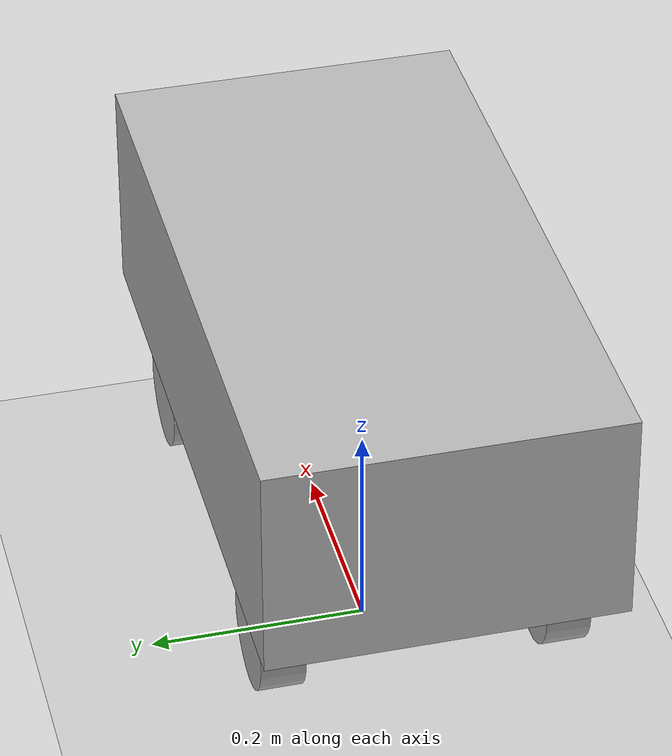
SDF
<sdf version="1.7">
 <world name="default">
  <light name="sun" type="directional">
   <pose>0 0 10 0 -0 0</pose>
   <diffuse>0.8 0.8 0.8 1</diffuse>
   <specular>0.2 0.2 0.2 1</specular>
   <attenuation>
    <range>1000</range>
    <constant>0.9</constant>
    <linear>0.01</linear>
    <quadratic>0.001</quadratic>
   </attenuation>
   <direction>-0.5 0.1 -0.9</direction>
   <spot><inner_angle>0</inner_angle><outer_angle>0</outer_angle><falloff>0</falloff></spot>
  </light>
  <model name="ground_plane">
   <static>1</static>
   <link name="link">
    <collision name="collision">
     <geometry><plane><normal>0 0 1</normal><size>100 100</size></plane></geometry>
     <surface><friction><ode><mu>100</mu><mu2>50</mu2></ode></friction></surface>
    </collision>
    <visual name="visual">
     <cast_shadows>0</cast_shadows>
     <geometry><plane><normal>0 0 1</normal><size>100 100</size></plane></geometry>
     <material>
      <script><uri>file://media/materials/scripts/gazebo.material</uri><name>Gazebo/Grey</name></script>
     </material>
    </visual>
   </link>
  </model>
  <gravity>0 0 -9.8</gravity>
  <magnetic_field>6e-06 2.3e-05 -4.2e-05</magnetic_field>
  <atmosphere type="adiabatic"/>
  <physics type="ode">
   <max_step_size>0.001</max_step_size>
   <real_time_factor>1</real_time_factor>
   <real_time_update_rate>1000</real_time_update_rate>
  </physics>
  <scene><ambient>0.4 0.4 0.4 1</ambient><background>0.7 0.7 0.7 1</background><shadows>1</shadows></scene>
  <audio><device>default</device></audio>
  <spherical_coordinates>
   <surface_model>EARTH_WGS84</surface_model>
   <latitude_deg>0</latitude_deg>
   <longitude_deg>0</longitude_deg>
   <elevation>0</elevation>
   <heading_deg>0</heading_deg>
  </spherical_coordinates>
  <model name="my_robot">
   <link name="base_footprint">
    <inertial>
     <pose>0 0 0.05 0 -0 0</pose>
     <mass>1</mass>
     <inertia><ixx>0.1</ixx><ixy>0</ixy><ixz>0</ixz><iyy>0.1</iyy><iyz>0</iyz><izz>0.1</izz></inertia>
    </inertial>
    <collision name="base_footprint_fixed_joint_lump__base_link_collision">
     <pose>0 0 0.05 0 -0 0</pose>
     <geometry><box><size>0.6 0.32 0.2</size></box></geometry>
    </collision>
    <visual name="base_footprint_fixed_joint_lump__base_link_visual">
     <pose>0 0 0.26 0 -0 0</pose>
     <geometry><box><size>0.6 0.32 0.2</size></box></geometry>
    </visual>
   </link>
   <joint name="joint_front_left" type="revolute">
    <pose relative_to="base_footprint">0.18 0.1275 0.1 0 -0 0</pose>
    <parent>base_footprint</parent>
    <child>wheel_front_left</child>
    <axis>
     <xyz>0 1 0</xyz>
     <limit><lower>-1e+16</lower><upper>1e+16</upper></limit>
     <dynamics><spring_reference>0</spring_reference><spring_stiffness>0</spring_stiffness></dynamics>
    </axis>
   </joint>
   <link name="wheel_front_left">
    <pose relative_to="joint_front_left">0 0 0 0 -0 0</pose>
    <inertial>
     <pose>0 0 0 1.57 -0 0</pose>
     <mass>0.1</mass>
     <inertia><ixx>0.01</ixx><ixy>0</ixy><ixz>0</ixz><iyy>0.01</iyy><iyz>0</iyz><izz>0.01</izz></inertia>
    </inertial>
    <collision name="wheel_front_left_collision">
     <pose>0 0 0 1.57 -0 0</pose>
     <geometry><cylinder><length>0.04</length><radius>0.05</radius></cylinder></geometry>
    </collision>
    <visual name="wheel_front_left_visual">
     <pose>0 0 0 1.57 -0 0</pose>
     <geometry><cylinder><length>0.04</length><radius>0.05</radius></cylinder></geometry>
    </visual>
   </link>
   <joint name="joint_front_right" type="revolute">
    <pose relative_to="base_footprint">0.18 -0.1275 0.1 0 -0 0</pose>
    <parent>base_footprint</parent>
    <child>wheel_front_right</child>
    <axis>
     <xyz>0 1 0</xyz>
     <limit><lower>-1e+16</lower><upper>1e+16</upper></limit>
     <dynamics><spring_reference>0</spring_reference><spring_stiffness>0</spring_stiffness></dynamics>
    </axis>
   </joint>
   <link name="wheel_front_right">
    <pose relative_to="joint_front_right">0 0 0 0 -0 0</pose>
    <inertial>
     <pose>0 0 0 1.57 -0 0</pose>
     <mass>0.1</mass>
     <inertia><ixx>0.01</ixx><ixy>0</ixy><ixz>0</ixz><iyy>0.01</iyy><iyz>0</iyz><izz>0.01</izz></inertia>
    </inertial>
    <collision name="wheel_front_right_collision">
     <pose>0 0 0 1.57 -0 0</pose>
     <geometry><cylinder><length>0.04</length><radius>0.05</radius></cylinder></geometry>
    </collision>
    <visual name="wheel_front_right_visual">
     <pose>0 0 0 1.57 -0 0</pose>
     <geometry><cylinder><length>0.04</length><radius>0.05</radius></cylinder></geometry>
    </visual>
   </link>
   <joint name="joint_rear_left" type="revolute">
    <pose relative_to="base_footprint">-0.18 0.1275 0.1 0 -0 0</pose>
    <parent>base_footprint</parent>
    <child>wheel_rear_left</child>
    <axis>
     <xyz>0 1 0</xyz>
     <limit><lower>-1e+16</lower><upper>1e+16</upper></limit>
     <dynamics><spring_reference>0</spring_reference><spring_stiffness>0</spring_stiffness></dynamics>
    </axis>
   </joint>
   <link name="wheel_rear_left">
    <pose relative_to="joint_rear_left">0 0 0 0 -0 0</pose>
    <inertial>
     <pose>0 0 0 1.57 -0 0</pose>
     <mass>0.1</mass>
     <inertia><ixx>0.01</ixx><ixy>0</ixy><ixz>0</ixz><iyy>0.01</iyy><iyz>0</iyz><izz>0.01</izz></inertia>
    </inertial>
    <collision name="wheel_rear_left_collision">
     <pose>0 0 0 1.57 -0 0</pose>
     <geometry><cylinder><length>0.04</length><radius>0.05</radius></cylinder></geometry>
    </collision>
    <visual name="wheel_rear_left_visual">
     <pose>0 0 0 1.57 -0 0</pose>
     <geometry><cylinder><length>0.04</length><radius>0.05</radius></cylinder></geometry>
    </visual>
   </link>
   <joint name="joint_rear_right" type="revolute">
    <pose relative_to="base_footprint">-0.18 -0.1275 0.1 0 -0 0</pose>
    <parent>base_footprint</parent>
    <child>wheel_rear_right</child>
    <axis>
     <xyz>0 1 0</xyz>
     <limit><lower>-1e+16</lower><upper>1e+16</upper></limit>
     <dynamics><spring_reference>0</spring_reference><spring_stiffness>0</spring_stiffness></dynamics>
    </axis>
   </joint>
   <link name="wheel_rear_right">
    <pose relative_to="joint_rear_right">0 0 0 0 -0 0</pose>
    <inertial>
     <pose>0 0 0 1.57 -0 0</pose>
     <mass>0.1</mass>
     <inertia><ixx>0.01</ixx><ixy>0</ixy><ixz>0</ixz><iyy>0.01</iyy><iyz>0</iyz><izz>0.01</izz></inertia>
    </inertial>
    <collision name="wheel_rear_right_collision">
     <pose>0 0 0 1.57 -0 0</pose>
     <geometry><cylinder><length>0.04</length><radius>0.05</radius></cylinder></geometry>
    </collision>
    <visual name="wheel_rear_right_visual">
     <pose>0 0 0 1.57 -0 0</pose>
     <geometry><cylinder><length>0.04</length><radius>0.05</radius></cylinder></geometry>
    </visual>
   </link>
   <pose>-0 -0 0.05 0 -0 0</pose>
  </model>
 </world>
</sdf>
